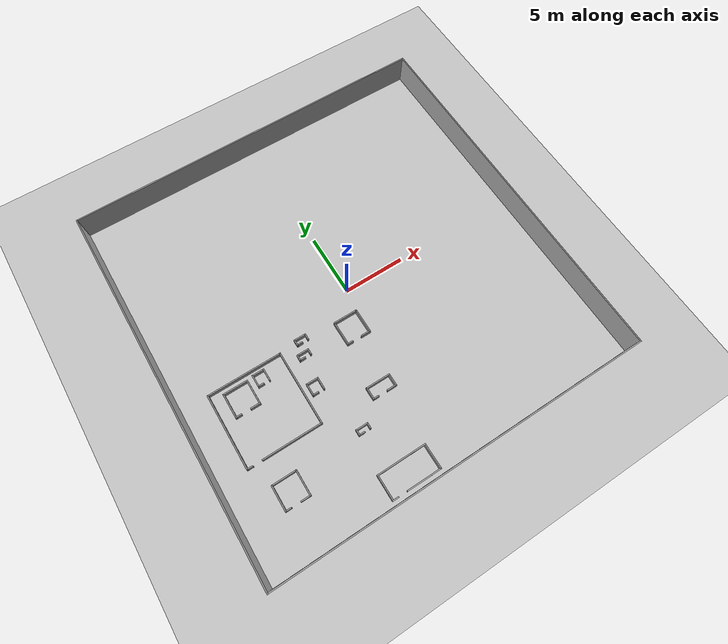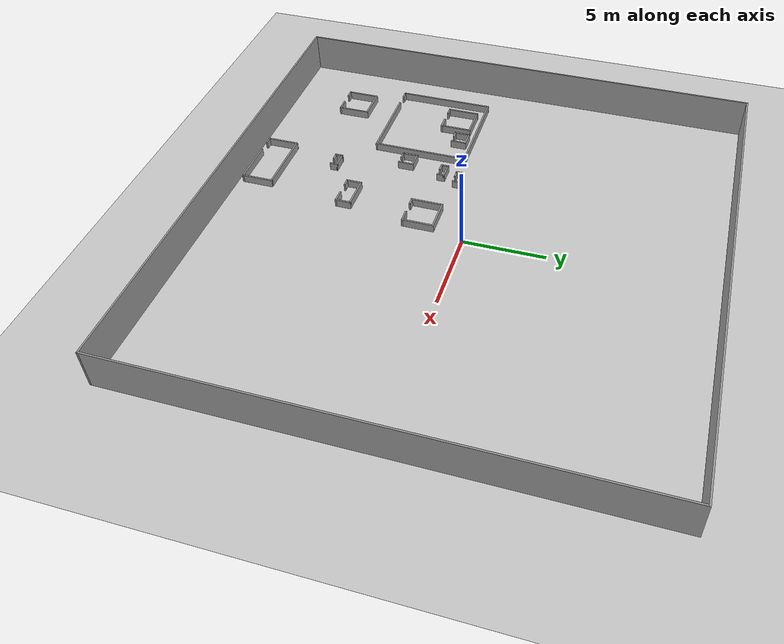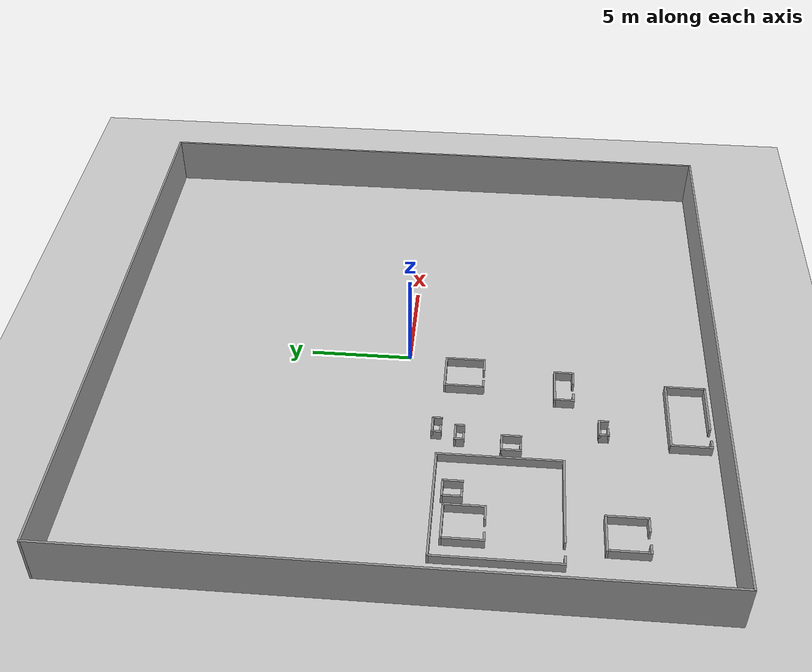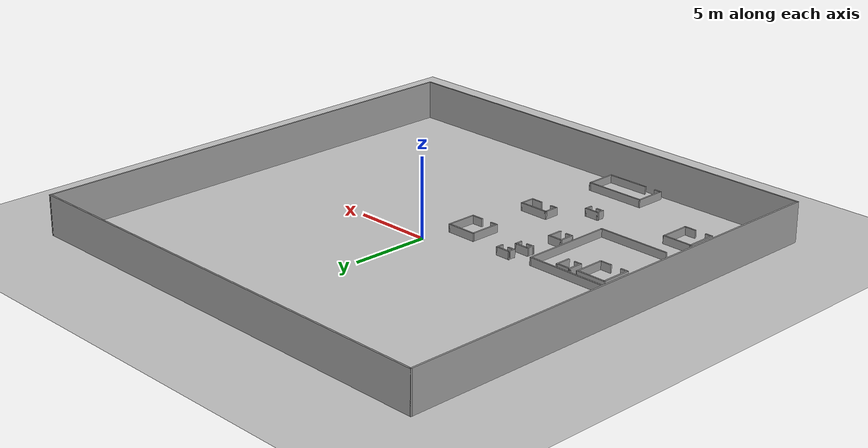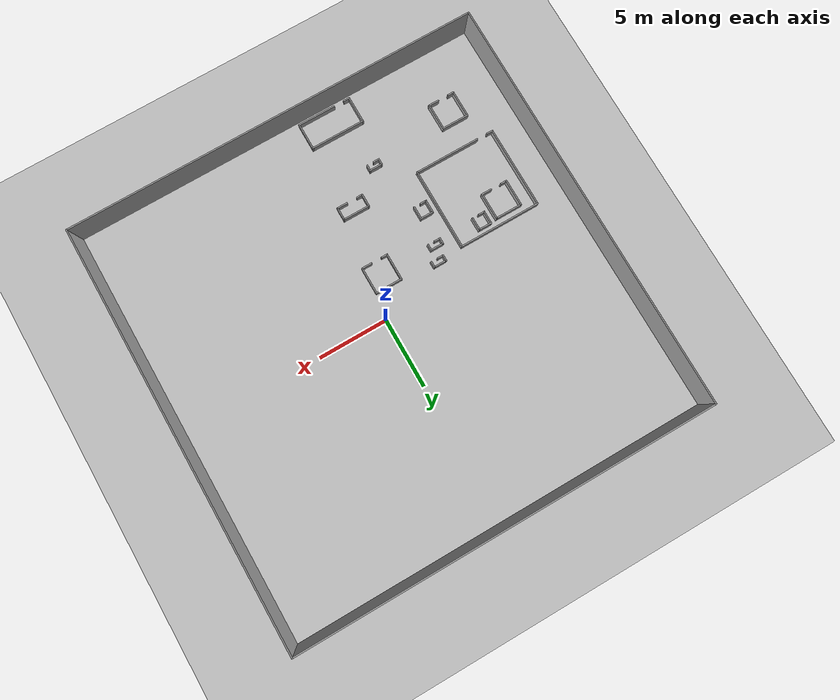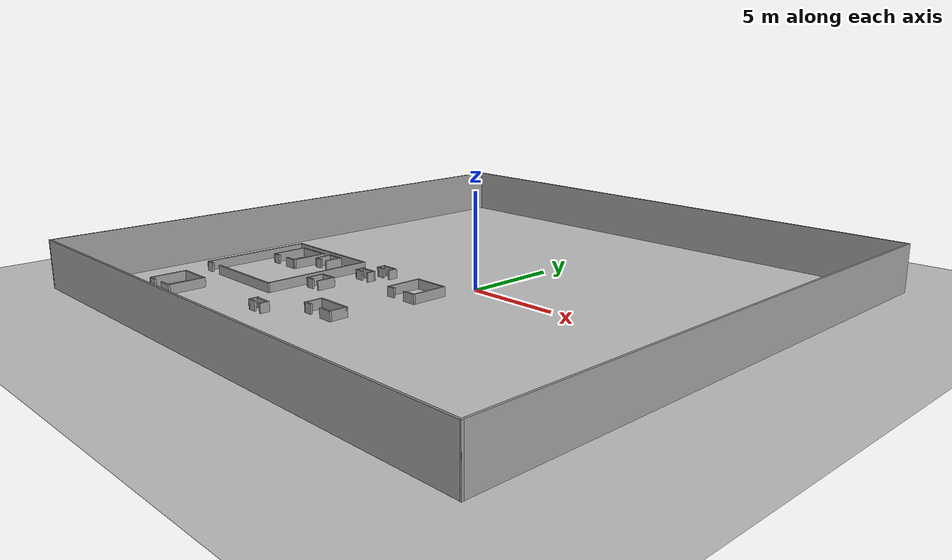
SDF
<sdf version="1.6">
 <world name="default">
  <model name="ground_plane">
   <static>1</static>
   <link name="link">
    <collision name="collision">
     <geometry><plane><normal>0 0 1</normal><size>30 30</size></plane></geometry>
     <surface>
      <contact><collide_bitmask>65535</collide_bitmask></contact>
      <friction><ode><mu>100</mu><mu2>50</mu2></ode></friction>
     </surface>
     <max_contacts>15</max_contacts>
    </collision>
    <visual name="visual">
     <cast_shadows>0</cast_shadows>
     <geometry><plane><normal>0 0 1</normal><size>30 30</size></plane></geometry>
     <material>
      <script><uri>file://media/materials/scripts/gazebo.material</uri><name>Gazebo/Grey</name></script>
     </material>
    </visual>
   </link>
  </model>
  <model name="outsidewall.sdf">
   <link name="Wall_3">
    <collision name="Wall_3_Collision">
     <geometry><box><size>30 0.10 2.5</size></box></geometry>
     <pose>0 0 1.25 0 -0 0</pose>
    </collision>
    <visual name="Wall_3_Visual">
     <pose>0 0 1.25 0 -0 0</pose>
     <geometry><box><size>30 0.10 2.5</size></box></geometry>
     <material>
      <script><uri>file://media/materials/scripts/gazebo.material</uri><name>Gazebo/Grey</name></script>
      <ambient>1 1 1 1</ambient>
     </material>
     <meta><layer>0</layer></meta>
    </visual>
    <pose>0 14.95 0 0 -0 0</pose>
   </link>
   <link name="Wall_5">
    <collision name="Wall_5_Collision">
     <geometry><box><size>30 0.10 2.5</size></box></geometry>
     <pose>0 0 1.25 0 -0 0</pose>
    </collision>
    <visual name="Wall_5_Visual">
     <pose>0 0 1.25 0 -0 0</pose>
     <geometry><box><size>30 0.10 2.5</size></box></geometry>
     <material>
      <script><uri>file://media/materials/scripts/gazebo.material</uri><name>Gazebo/Grey</name></script>
      <ambient>1 1 1 1</ambient>
     </material>
     <meta><layer>0</layer></meta>
    </visual>
    <pose>-14.95 0 0 0 -0 1.5707</pose>
   </link>
   <link name="Wall_6">
    <collision name="Wall_6_Collision">
     <geometry><box><size>30 0.10 2.5</size></box></geometry>
     <pose>0 0 1.25 0 -0 0</pose>
    </collision>
    <visual name="Wall_6_Visual">
     <pose>0 0 1.25 0 -0 0</pose>
     <geometry><box><size>30 0.10 2.5</size></box></geometry>
     <material>
      <script><uri>file://media/materials/scripts/gazebo.material</uri><name>Gazebo/Grey</name></script>
      <ambient>1 1 1 1</ambient>
     </material>
     <meta><layer>0</layer></meta>
    </visual>
    <pose>0 -14.95 0 0 -0 0</pose>
   </link>
   <link name="Wall_7">
    <collision name="Wall_7_Collision">
     <geometry><box><size>30 0.10 2.5</size></box></geometry>
     <pose>0 0 1.25 0 -0 0</pose>
    </collision>
    <visual name="Wall_7_Visual">
     <pose>0 0 1.25 0 -0 0</pose>
     <geometry><box><size>30 0.10 2.5</size></box></geometry>
     <material>
      <script><uri>file://media/materials/scripts/gazebo.material</uri><name>Gazebo/Grey</name></script>
      <ambient>1 1 1 1</ambient>
     </material>
     <meta><layer>0</layer></meta>
    </visual>
    <pose>14.95 0 0 0 -0 1.5707</pose>
   </link>
   <static>1</static>
  </model>
  <model name="shape7">
   <pose>-9.8 -4.7 0 0 -0 0</pose>
   <link name="Wall_34">
    <collision name="Wall_34_Collision">
     <geometry><box><size>6 0.1 0.5</size></box></geometry>
     <pose>0 0 0.25 0 -0 0</pose>
    </collision>
    <visual name="Wall_34_Visual">
     <pose>0 0 0.25 0 -0 0</pose>
     <geometry><box><size>6 0.1 0.5</size></box></geometry>
     <material>
      <script><uri>file://media/materials/scripts/gazebo.material</uri><name>Gazebo/Grey</name></script>
      <ambient>1 1 1 1</ambient>
     </material>
     <meta><layer>0</layer></meta>
    </visual>
    <pose>0 2.95 0 0 -0 0</pose>
   </link>
   <link name="Wall_35">
    <collision name="Wall_35_Collision">
     <geometry><box><size>6 0.1 0.5</size></box></geometry>
     <pose>0 0 0.25 0 -0 0</pose>
    </collision>
    <visual name="Wall_35_Visual">
     <pose>0 0 0.25 0 -0 0</pose>
     <geometry><box><size>6 0.1 0.5</size></box></geometry>
     <material>
      <script><uri>file://media/materials/scripts/gazebo.material</uri><name>Gazebo/Grey</name></script>
      <ambient>1 1 1 1</ambient>
     </material>
     <meta><layer>0</layer></meta>
    </visual>
    <pose>2.95 0 0 0 -0 -1.5708</pose>
   </link>
   <link name="Wall_36">
    <collision name="Wall_36_Collision">
     <geometry><box><size>4.8 0.1 0.5</size></box></geometry>
     <pose>0 0 0.25 0 -0 0</pose>
    </collision>
    <visual name="Wall_36_Visual">
     <pose>0 0 0.25 0 -0 0</pose>
     <geometry><box><size>4.8 0.1 0.5</size></box></geometry>
     <material>
      <script><uri>file://media/materials/scripts/gazebo.material</uri><name>Gazebo/Grey</name></script>
      <ambient>1 1 1 1</ambient>
     </material>
     <meta><layer>0</layer></meta>
    </visual>
    <pose>0.6 -2.95 0 0 -0 3.14159</pose>
   </link>
   <link name="Wall_38">
    <collision name="Wall_38_Collision">
     <geometry><box><size>6 0.1 0.5</size></box></geometry>
     <pose>0 0 0.25 0 -0 0</pose>
    </collision>
    <visual name="Wall_38_Visual">
     <pose>0 0 0.25 0 -0 0</pose>
     <geometry><box><size>6 0.1 0.5</size></box></geometry>
     <material>
      <script><uri>file://media/materials/scripts/gazebo.material</uri><name>Gazebo/Grey</name></script>
      <ambient>1 1 1 1</ambient>
     </material>
     <meta><layer>0</layer></meta>
    </visual>
    <pose>-2.95 0 0 0 -0 -1.5708</pose>
   </link>
   <link name="Wall_39">
    <collision name="Wall_39_Collision">
     <geometry><box><size>0.5 0.1 0.5</size></box></geometry>
     <pose>0 0 0.25 0 -0 0</pose>
    </collision>
    <visual name="Wall_39_Visual">
     <pose>0 0 0.25 0 -0 0</pose>
     <geometry><box><size>0.5 0.1 0.5</size></box></geometry>
     <material>
      <script><uri>file://media/materials/scripts/gazebo.material</uri><name>Gazebo/Grey</name></script>
      <ambient>1 1 1 1</ambient>
     </material>
     <meta><layer>0</layer></meta>
    </visual>
    <pose>-2.75 -2.95 0 0 -0 0</pose>
   </link>
   <static>1</static>
  </model>
  <model name="shape5">
   <pose>-10.9 -10.4 0 0 -0 0</pose>
   <link name="Wall_20">
    <collision name="Wall_20_Collision">
     <geometry><box><size>2 0.1 0.5</size></box></geometry>
     <pose>0 0 0.25 0 -0 0</pose>
    </collision>
    <visual name="Wall_20_Visual">
     <pose>0 0 0.25 0 -0 0</pose>
     <geometry><box><size>2 0.1 0.5</size></box></geometry>
     <material>
      <script><uri>file://media/materials/scripts/gazebo.material</uri><name>Gazebo/Grey</name></script>
      <ambient>1 1 1 1</ambient>
     </material>
     <meta><layer>0</layer></meta>
    </visual>
    <pose>-0 0.95 0 0 -0 0</pose>
   </link>
   <link name="Wall_21">
    <collision name="Wall_21_Collision">
     <geometry><box><size>2 0.1 0.5</size></box></geometry>
     <pose>0 0 0.25 0 -0 0</pose>
    </collision>
    <visual name="Wall_21_Visual">
     <pose>0 0 0.25 0 -0 0</pose>
     <geometry><box><size>2 0.1 0.5</size></box></geometry>
     <material>
      <script><uri>file://media/materials/scripts/gazebo.material</uri><name>Gazebo/Grey</name></script>
      <ambient>1 1 1 1</ambient>
     </material>
     <meta><layer>0</layer></meta>
    </visual>
    <pose>0.95 0 0 0 -0 -1.5708</pose>
   </link>
   <link name="Wall_22">
    <collision name="Wall_22_Collision">
     <geometry><box><size>0.8 0.1 0.5</size></box></geometry>
     <pose>0 0 0.25 0 -0 0</pose>
    </collision>
    <visual name="Wall_22_Visual">
     <pose>0 0 0.25 0 -0 0</pose>
     <geometry><box><size>0.8 0.1 0.5</size></box></geometry>
     <material>
      <script><uri>file://media/materials/scripts/gazebo.material</uri><name>Gazebo/Grey</name></script>
      <ambient>1 1 1 1</ambient>
     </material>
     <meta><layer>0</layer></meta>
    </visual>
    <pose>0.6 -0.95 0 0 -0 3.14159</pose>
   </link>
   <link name="Wall_24">
    <collision name="Wall_24_Collision">
     <geometry><box><size>2 0.1 0.5</size></box></geometry>
     <pose>0 0 0.25 0 -0 0</pose>
    </collision>
    <visual name="Wall_24_Visual">
     <pose>0 0 0.25 0 -0 0</pose>
     <geometry><box><size>2 0.1 0.5</size></box></geometry>
     <material>
      <script><uri>file://media/materials/scripts/gazebo.material</uri><name>Gazebo/Grey</name></script>
      <ambient>1 1 1 1</ambient>
     </material>
     <meta><layer>0</layer></meta>
    </visual>
    <pose>-0.95 0 0 0 -0 -1.5708</pose>
   </link>
   <link name="Wall_25">
    <collision name="Wall_25_Collision">
     <geometry><box><size>0.5 0.1 0.5</size></box></geometry>
     <pose>0 0 0.25 0 -0 0</pose>
    </collision>
    <visual name="Wall_25_Visual">
     <pose>0 0 0.25 0 -0 0</pose>
     <geometry><box><size>0.5 0.1 0.5</size></box></geometry>
     <material>
      <script><uri>file://media/materials/scripts/gazebo.material</uri><name>Gazebo/Grey</name></script>
      <ambient>1 1 1 1</ambient>
     </material>
     <meta><layer>0</layer></meta>
    </visual>
    <pose>-0.75 -0.95 0 0 -0 0</pose>
   </link>
   <static>1</static>
  </model>
  <model name="shape4">
   <pose>-5.9 -5.2 0 0 -0 0</pose>
   <link name="Wall_14">
    <collision name="Wall_14_Collision">
     <geometry><box><size>1 0.1 0.5</size></box></geometry>
     <pose>0 0 0.25 0 -0 0</pose>
    </collision>
    <visual name="Wall_14_Visual">
     <pose>0 0 0.25 0 -0 0</pose>
     <geometry><box><size>1 0.1 0.5</size></box></geometry>
     <material>
      <script><uri>file://media/materials/scripts/gazebo.material</uri><name>Gazebo/Grey</name></script>
      <ambient>1 1 1 1</ambient>
     </material>
     <meta><layer>0</layer></meta>
    </visual>
    <pose>-0 0.45 0 0 -0 0</pose>
   </link>
   <link name="Wall_15">
    <collision name="Wall_15_Collision">
     <geometry><box><size>1 0.1 0.5</size></box></geometry>
     <pose>0 0 0.25 0 -0 0</pose>
    </collision>
    <visual name="Wall_15_Visual">
     <pose>0 0 0.25 0 -0 0</pose>
     <geometry><box><size>1 0.1 0.5</size></box></geometry>
     <material>
      <script><uri>file://media/materials/scripts/gazebo.material</uri><name>Gazebo/Grey</name></script>
      <ambient>1 1 1 1</ambient>
     </material>
     <meta><layer>0</layer></meta>
    </visual>
    <pose>0.45 -0 0 0 -0 -1.5708</pose>
   </link>
   <link name="Wall_17">
    <collision name="Wall_17_Collision">
     <geometry><box><size>1 0.1 0.5</size></box></geometry>
     <pose>0 0 0.25 0 -0 0</pose>
    </collision>
    <visual name="Wall_17_Visual">
     <pose>0 0 0.25 0 -0 0</pose>
     <geometry><box><size>1 0.1 0.5</size></box></geometry>
     <material>
      <script><uri>file://media/materials/scripts/gazebo.material</uri><name>Gazebo/Grey</name></script>
      <ambient>1 1 1 1</ambient>
     </material>
     <meta><layer>0</layer></meta>
    </visual>
    <pose>-0.45 -0 0 0 -0 -1.5708</pose>
   </link>
   <link name="Wall_18">
    <collision name="Wall_18_Collision">
     <geometry><box><size>0.5 0.1 0.5</size></box></geometry>
     <pose>0 0 0.25 0 -0 0</pose>
    </collision>
    <visual name="Wall_18_Visual">
     <pose>0 0 0.25 0 -0 0</pose>
     <geometry><box><size>0.5 0.1 0.5</size></box></geometry>
     <material>
      <script><uri>file://media/materials/scripts/gazebo.material</uri><name>Gazebo/Grey</name></script>
      <ambient>1 1 1 1</ambient>
     </material>
     <meta><layer>0</layer></meta>
    </visual>
    <pose>-0.25 -0.45 0 0 -0 0</pose>
   </link>
   <static>1</static>
  </model>
  <model name="shape0">
   <pose>-4.6 -9.55 0 0 -0 0</pose>
   <link name="Wall_0">
    <pose>0 0.2 0 0 -0 0</pose>
    <inertial>
     <mass>1</mass>
     <inertia><ixx>1</ixx><ixy>0</ixy><ixz>0</ixz><iyy>1</iyy><iyz>0</iyz><izz>1</izz></inertia>
    </inertial>
    <visual name="Wall_0_Visual">
     <pose>0 0 0.25 0 -0 0</pose>
     <geometry><box><size>1 0.1 0.5</size></box></geometry>
     <material>
      <script><uri>file://media/materials/scripts/gazebo.material</uri><name>Gazebo/Grey</name></script>
      <ambient>1 1 1 1</ambient>
      <shader type="vertex"><normal_map>__default__</normal_map></shader>
      <diffuse>0.7 0.7 0.7 1</diffuse>
      <specular>0.01 0.01 0.01 1</specular>
      <emissive>0 0 0 1</emissive>
     </material>
     <meta><layer>0</layer></meta>
    </visual>
    <collision name="Wall_0_Collision">
     <pose>0 0 0.25 0 -0 0</pose>
     <geometry><box><size>1 0.1 0.5</size></box></geometry>
     <surface>
      <friction>
       <ode><mu>1</mu><mu2>1</mu2><fdir1>0 0 0</fdir1><slip1>0</slip1><slip2>0</slip2></ode>
       <torsional>
        <coefficient>1</coefficient>
        <patch_radius>0</patch_radius>
        <surface_radius>0</surface_radius>
        <use_patch_radius>1</use_patch_radius>
        <ode><slip>0</slip></ode>
       </torsional>
      </friction>
      <bounce><restitution_coefficient>0</restitution_coefficient><threshold>1e+06</threshold></bounce>
      <contact>
       <collide_without_contact>0</collide_without_contact>
       <collide_without_contact_bitmask>1</collide_without_contact_bitmask>
       <collide_bitmask>1</collide_bitmask>
       <ode>
        <soft_cfm>0</soft_cfm>
        <soft_erp>0.2</soft_erp>
        <kp>1e+13</kp>
        <kd>1</kd>
        <max_vel>0.01</max_vel>
        <min_depth>0</min_depth>
       </ode>
       <bullet>
        <split_impulse>1</split_impulse>
        <split_impulse_penetration_threshold>-0.01</split_impulse_penetration_threshold>
        <soft_cfm>0</soft_cfm>
        <soft_erp>0.2</soft_erp>
        <kp>1e+13</kp>
        <kd>1</kd>
       </bullet>
      </contact>
     </surface>
    </collision>
   </link>
   <link name="Wall_2">
    <pose>-0.45 0 0.01 0 0 -1.5708</pose>
    <inertial>
     <mass>1</mass>
     <inertia><ixx>1</ixx><ixy>0</ixy><ixz>0</ixz><iyy>1</iyy><iyz>0</iyz><izz>1</izz></inertia>
    </inertial>
    <visual name="Wall_2_Visual">
     <pose>0 0 0.25 0 -0 0</pose>
     <geometry><box><size>0.5 0.1 0.5</size></box></geometry>
     <material>
      <script><uri>file://media/materials/scripts/gazebo.material</uri><name>Gazebo/Grey</name></script>
      <ambient>1 1 1 1</ambient>
      <shader type="vertex"><normal_map>__default__</normal_map></shader>
      <diffuse>0.7 0.7 0.7 1</diffuse>
      <specular>0.01 0.01 0.01 1</specular>
      <emissive>0 0 0 1</emissive>
     </material>
     <meta><layer>0</layer></meta>
    </visual>
    <collision name="Wall_2_Collision">
     <pose>0 0 0.25 0 -0 0</pose>
     <geometry><box><size>0.5 0.1 0.5</size></box></geometry>
     <surface>
      <friction>
       <ode><mu>1</mu><mu2>1</mu2><fdir1>0 0 0</fdir1><slip1>0</slip1><slip2>0</slip2></ode>
       <torsional>
        <coefficient>1</coefficient>
        <patch_radius>0</patch_radius>
        <surface_radius>0</surface_radius>
        <use_patch_radius>1</use_patch_radius>
        <ode><slip>0</slip></ode>
       </torsional>
      </friction>
      <bounce><restitution_coefficient>0</restitution_coefficient><threshold>1e+06</threshold></bounce>
      <contact>
       <collide_without_contact>0</collide_without_contact>
       <collide_without_contact_bitmask>1</collide_without_contact_bitmask>
       <collide_bitmask>1</collide_bitmask>
       <ode>
        <soft_cfm>0</soft_cfm>
        <soft_erp>0.2</soft_erp>
        <kp>1e+13</kp>
        <kd>1</kd>
        <max_vel>0.01</max_vel>
        <min_depth>0</min_depth>
       </ode>
       <bullet>
        <split_impulse>1</split_impulse>
        <split_impulse_penetration_threshold>-0.01</split_impulse_penetration_threshold>
        <soft_cfm>0</soft_cfm>
        <soft_erp>0.2</soft_erp>
        <kp>1e+13</kp>
        <kd>1</kd>
       </bullet>
      </contact>
     </surface>
    </collision>
   </link>
   <link name="Wall_4">
    <pose>0.45 0 0 0 0 -1.5708</pose>
    <inertial>
     <mass>1</mass>
     <inertia><ixx>1</ixx><ixy>0</ixy><ixz>0</ixz><iyy>1</iyy><iyz>0</iyz><izz>1</izz></inertia>
    </inertial>
    <visual name="Wall_4_Visual">
     <pose>0 0 0.25 0 -0 0</pose>
     <geometry><box><size>0.5 0.1 0.5</size></box></geometry>
     <material>
      <script><uri>file://media/materials/scripts/gazebo.material</uri><name>Gazebo/Grey</name></script>
      <ambient>1 1 1 1</ambient>
      <shader type="vertex"><normal_map>__default__</normal_map></shader>
      <diffuse>0.7 0.7 0.7 1</diffuse>
      <specular>0.01 0.01 0.01 1</specular>
      <emissive>0 0 0 1</emissive>
     </material>
     <meta><layer>0</layer></meta>
    </visual>
    <collision name="Wall_4_Collision">
     <pose>0 0 0.25 0 -0 0</pose>
     <geometry><box><size>0.5 0.1 0.5</size></box></geometry>
     <surface>
      <friction>
       <ode><mu>1</mu><mu2>1</mu2><fdir1>0 0 0</fdir1><slip1>0</slip1><slip2>0</slip2></ode>
       <torsional>
        <coefficient>1</coefficient>
        <patch_radius>0</patch_radius>
        <surface_radius>0</surface_radius>
        <use_patch_radius>1</use_patch_radius>
        <ode><slip>0</slip></ode>
       </torsional>
      </friction>
      <bounce><restitution_coefficient>0</restitution_coefficient><threshold>1e+06</threshold></bounce>
      <contact>
       <collide_without_contact>0</collide_without_contact>
       <collide_without_contact_bitmask>1</collide_without_contact_bitmask>
       <collide_bitmask>1</collide_bitmask>
       <ode>
        <soft_cfm>0</soft_cfm>
        <soft_erp>0.2</soft_erp>
        <kp>1e+13</kp>
        <kd>1</kd>
        <max_vel>0.01</max_vel>
        <min_depth>0</min_depth>
       </ode>
       <bullet>
        <split_impulse>1</split_impulse>
        <split_impulse_penetration_threshold>-0.01</split_impulse_penetration_threshold>
        <soft_cfm>0</soft_cfm>
        <soft_erp>0.2</soft_erp>
        <kp>1e+13</kp>
        <kd>1</kd>
       </bullet>
      </contact>
     </surface>
    </collision>
   </link>
   <link name="Wall_7">
    <pose>-0.25 -0.2 0 0 -0 0</pose>
    <inertial>
     <mass>1</mass>
     <inertia><ixx>1</ixx><ixy>0</ixy><ixz>0</ixz><iyy>1</iyy><iyz>0</iyz><izz>1</izz></inertia>
    </inertial>
    <visual name="Wall_7_Visual">
     <pose>0 0 0.25 0 -0 0</pose>
     <geometry><box><size>0.5 0.1 0.5</size></box></geometry>
     <material>
      <script><uri>file://media/materials/scripts/gazebo.material</uri><name>Gazebo/Grey</name></script>
      <ambient>1 1 1 1</ambient>
      <shader type="vertex"><normal_map>__default__</normal_map></shader>
      <diffuse>0.7 0.7 0.7 1</diffuse>
      <specular>0.01 0.01 0.01 1</specular>
      <emissive>0 0 0 1</emissive>
     </material>
     <meta><layer>0</layer></meta>
    </visual>
    <collision name="Wall_7_Collision">
     <pose>0 0 0.25 0 -0 0</pose>
     <geometry><box><size>0.5 0.1 0.5</size></box></geometry>
     <surface>
      <friction>
       <ode><mu>1</mu><mu2>1</mu2><fdir1>0 0 0</fdir1><slip1>0</slip1><slip2>0</slip2></ode>
       <torsional>
        <coefficient>1</coefficient>
        <patch_radius>0</patch_radius>
        <surface_radius>0</surface_radius>
        <use_patch_radius>1</use_patch_radius>
        <ode><slip>0</slip></ode>
       </torsional>
      </friction>
      <bounce><restitution_coefficient>0</restitution_coefficient><threshold>1e+06</threshold></bounce>
      <contact>
       <collide_without_contact>0</collide_without_contact>
       <collide_without_contact_bitmask>1</collide_without_contact_bitmask>
       <collide_bitmask>1</collide_bitmask>
       <ode>
        <soft_cfm>0</soft_cfm>
        <soft_erp>0.2</soft_erp>
        <kp>1e+13</kp>
        <kd>1</kd>
        <max_vel>0.01</max_vel>
        <min_depth>0</min_depth>
       </ode>
       <bullet>
        <split_impulse>1</split_impulse>
        <split_impulse_penetration_threshold>-0.01</split_impulse_penetration_threshold>
        <soft_cfm>0</soft_cfm>
        <soft_erp>0.2</soft_erp>
        <kp>1e+13</kp>
        <kd>1</kd>
       </bullet>
      </contact>
     </surface>
    </collision>
   </link>
   <static>1</static>
  </model>
  <model name="shape1">
   <pose>-1.9 -7.7 0 0 -0 0</pose>
   <link name="Wall_0">
    <collision name="Wall_0_Collision">
     <geometry><box><size>2 0.1 0.5</size></box></geometry>
     <pose>0 0 0.25 0 -0 0</pose>
    </collision>
    <visual name="Wall_0_Visual">
     <pose>0 0 0.25 0 -0 0</pose>
     <geometry><box><size>2 0.1 0.5</size></box></geometry>
     <material>
      <script><uri>file://media/materials/scripts/gazebo.material</uri><name>Gazebo/Grey</name></script>
      <ambient>1 1 1 1</ambient>
     </material>
     <meta><layer>0</layer></meta>
    </visual>
    <pose>0 0.45 0 0 -0 0</pose>
   </link>
   <link name="Wall_1">
    <collision name="Wall_1_Collision">
     <geometry><box><size>1 0.1 0.5</size></box></geometry>
     <pose>0 0 0.25 0 -0 0</pose>
    </collision>
    <visual name="Wall_1_Visual">
     <pose>0 0 0.25 0 -0 0</pose>
     <geometry><box><size>1 0.1 0.5</size></box></geometry>
     <material>
      <script><uri>file://media/materials/scripts/gazebo.material</uri><name>Gazebo/Grey</name></script>
      <ambient>1 1 1 1</ambient>
     </material>
     <meta><layer>0</layer></meta>
    </visual>
    <pose>0.95 -0 0 0 -0 -1.5708</pose>
   </link>
   <link name="Wall_2">
    <collision name="Wall_2_Collision">
     <geometry><box><size>0.8 0.1 0.5</size></box></geometry>
     <pose>0 0 0.25 0 -0 0</pose>
    </collision>
    <visual name="Wall_2_Visual">
     <pose>0 0 0.25 0 -0 0</pose>
     <geometry><box><size>0.8 0.1 0.5</size></box></geometry>
     <material>
      <script><uri>file://media/materials/scripts/gazebo.material</uri><name>Gazebo/Grey</name></script>
      <ambient>1 1 1 1</ambient>
     </material>
     <meta><layer>0</layer></meta>
    </visual>
    <pose>0.6 -0.45 0 0 -0 3.14159</pose>
   </link>
   <link name="Wall_4">
    <collision name="Wall_4_Collision">
     <geometry><box><size>1 0.1 0.5</size></box></geometry>
     <pose>0 0 0.25 0 -0 0</pose>
    </collision>
    <visual name="Wall_4_Visual">
     <pose>0 0 0.25 0 -0 0</pose>
     <geometry><box><size>1 0.1 0.5</size></box></geometry>
     <material>
      <script><uri>file://media/materials/scripts/gazebo.material</uri><name>Gazebo/Grey</name></script>
      <ambient>1 1 1 1</ambient>
     </material>
     <meta><layer>0</layer></meta>
    </visual>
    <pose>-0.95 -0 0 0 -0 -1.5708</pose>
   </link>
   <link name="Wall_5">
    <collision name="Wall_5_Collision">
     <geometry><box><size>0.499474 0.1 0.5</size></box></geometry>
     <pose>0 0 0.25 0 -0 0</pose>
    </collision>
    <visual name="Wall_5_Visual">
     <pose>0 0 0.25 0 -0 0</pose>
     <geometry><box><size>0.499474 0.1 0.5</size></box></geometry>
     <material>
      <script><uri>file://media/materials/scripts/gazebo.material</uri><name>Gazebo/Grey</name></script>
      <ambient>1 1 1 1</ambient>
     </material>
     <meta><layer>0</layer></meta>
    </visual>
    <pose>-0.75 -0.45 0 0 -0 0</pose>
   </link>
   <static>1</static>
  </model>
  <model name="shape5">
   <pose>-10.8 -3.2 0 0 -0 0</pose>
   <link name="Wall_20">
    <collision name="Wall_20_Collision">
     <geometry><box><size>2 0.1 0.5</size></box></geometry>
     <pose>0 0 0.25 0 -0 0</pose>
    </collision>
    <visual name="Wall_20_Visual">
     <pose>0 0 0.25 0 -0 0</pose>
     <geometry><box><size>2 0.1 0.5</size></box></geometry>
     <material>
      <script><uri>file://media/materials/scripts/gazebo.material</uri><name>Gazebo/Grey</name></script>
      <ambient>1 1 1 1</ambient>
     </material>
     <meta><layer>0</layer></meta>
    </visual>
    <pose>-0 0.95 0 0 -0 0</pose>
   </link>
   <link name="Wall_21">
    <collision name="Wall_21_Collision">
     <geometry><box><size>2 0.1 0.5</size></box></geometry>
     <pose>0 0 0.25 0 -0 0</pose>
    </collision>
    <visual name="Wall_21_Visual">
     <pose>0 0 0.25 0 -0 0</pose>
     <geometry><box><size>2 0.1 0.5</size></box></geometry>
     <material>
      <script><uri>file://media/materials/scripts/gazebo.material</uri><name>Gazebo/Grey</name></script>
      <ambient>1 1 1 1</ambient>
     </material>
     <meta><layer>0</layer></meta>
    </visual>
    <pose>0.95 0 0 0 -0 -1.5708</pose>
   </link>
   <link name="Wall_22">
    <collision name="Wall_22_Collision">
     <geometry><box><size>0.8 0.1 0.5</size></box></geometry>
     <pose>0 0 0.25 0 -0 0</pose>
    </collision>
    <visual name="Wall_22_Visual">
     <pose>0 0 0.25 0 -0 0</pose>
     <geometry><box><size>0.8 0.1 0.5</size></box></geometry>
     <material>
      <script><uri>file://media/materials/scripts/gazebo.material</uri><name>Gazebo/Grey</name></script>
      <ambient>1 1 1 1</ambient>
     </material>
     <meta><layer>0</layer></meta>
    </visual>
    <pose>0.6 -0.95 0 0 -0 3.14159</pose>
   </link>
   <link name="Wall_24">
    <collision name="Wall_24_Collision">
     <geometry><box><size>2 0.1 0.5</size></box></geometry>
     <pose>0 0 0.25 0 -0 0</pose>
    </collision>
    <visual name="Wall_24_Visual">
     <pose>0 0 0.25 0 -0 0</pose>
     <geometry><box><size>2 0.1 0.5</size></box></geometry>
     <material>
      <script><uri>file://media/materials/scripts/gazebo.material</uri><name>Gazebo/Grey</name></script>
      <ambient>1 1 1 1</ambient>
     </material>
     <meta><layer>0</layer></meta>
    </visual>
    <pose>-0.95 0 0 0 -0 -1.5708</pose>
   </link>
   <link name="Wall_25">
    <collision name="Wall_25_Collision">
     <geometry><box><size>0.5 0.1 0.5</size></box></geometry>
     <pose>0 0 0.25 0 -0 0</pose>
    </collision>
    <visual name="Wall_25_Visual">
     <pose>0 0 0.25 0 -0 0</pose>
     <geometry><box><size>0.5 0.1 0.5</size></box></geometry>
     <material>
      <script><uri>file://media/materials/scripts/gazebo.material</uri><name>Gazebo/Grey</name></script>
      <ambient>1 1 1 1</ambient>
     </material>
     <meta><layer>0</layer></meta>
    </visual>
    <pose>-0.75 -0.95 0 0 -0 0</pose>
   </link>
   <static>1</static>
  </model>
  <model name="shape0">
   <pose>-5 -1.65 0 0 -0 0</pose>
   <link name="Wall_0">
    <pose>0 0.2 0 0 -0 0</pose>
    <inertial>
     <mass>1</mass>
     <inertia><ixx>1</ixx><ixy>0</ixy><ixz>0</ixz><iyy>1</iyy><iyz>0</iyz><izz>1</izz></inertia>
    </inertial>
    <visual name="Wall_0_Visual">
     <pose>0 0 0.25 0 -0 0</pose>
     <geometry><box><size>1 0.1 0.5</size></box></geometry>
     <material>
      <script><uri>file://media/materials/scripts/gazebo.material</uri><name>Gazebo/Grey</name></script>
      <ambient>1 1 1 1</ambient>
      <shader type="vertex"><normal_map>__default__</normal_map></shader>
      <diffuse>0.7 0.7 0.7 1</diffuse>
      <specular>0.01 0.01 0.01 1</specular>
      <emissive>0 0 0 1</emissive>
     </material>
     <meta><layer>0</layer></meta>
    </visual>
    <collision name="Wall_0_Collision">
     <pose>0 0 0.25 0 -0 0</pose>
     <geometry><box><size>1 0.1 0.5</size></box></geometry>
     <surface>
      <friction>
       <ode><mu>1</mu><mu2>1</mu2><fdir1>0 0 0</fdir1><slip1>0</slip1><slip2>0</slip2></ode>
       <torsional>
        <coefficient>1</coefficient>
        <patch_radius>0</patch_radius>
        <surface_radius>0</surface_radius>
        <use_patch_radius>1</use_patch_radius>
        <ode><slip>0</slip></ode>
       </torsional>
      </friction>
      <bounce><restitution_coefficient>0</restitution_coefficient><threshold>1e+06</threshold></bounce>
      <contact>
       <collide_without_contact>0</collide_without_contact>
       <collide_without_contact_bitmask>1</collide_without_contact_bitmask>
       <collide_bitmask>1</collide_bitmask>
       <ode>
        <soft_cfm>0</soft_cfm>
        <soft_erp>0.2</soft_erp>
        <kp>1e+13</kp>
        <kd>1</kd>
        <max_vel>0.01</max_vel>
        <min_depth>0</min_depth>
       </ode>
       <bullet>
        <split_impulse>1</split_impulse>
        <split_impulse_penetration_threshold>-0.01</split_impulse_penetration_threshold>
        <soft_cfm>0</soft_cfm>
        <soft_erp>0.2</soft_erp>
        <kp>1e+13</kp>
        <kd>1</kd>
       </bullet>
      </contact>
     </surface>
    </collision>
   </link>
   <link name="Wall_2">
    <pose>-0.45 0 0.01 0 0 -1.5708</pose>
    <inertial>
     <mass>1</mass>
     <inertia><ixx>1</ixx><ixy>0</ixy><ixz>0</ixz><iyy>1</iyy><iyz>0</iyz><izz>1</izz></inertia>
    </inertial>
    <visual name="Wall_2_Visual">
     <pose>0 0 0.25 0 -0 0</pose>
     <geometry><box><size>0.5 0.1 0.5</size></box></geometry>
     <material>
      <script><uri>file://media/materials/scripts/gazebo.material</uri><name>Gazebo/Grey</name></script>
      <ambient>1 1 1 1</ambient>
      <shader type="vertex"><normal_map>__default__</normal_map></shader>
      <diffuse>0.7 0.7 0.7 1</diffuse>
      <specular>0.01 0.01 0.01 1</specular>
      <emissive>0 0 0 1</emissive>
     </material>
     <meta><layer>0</layer></meta>
    </visual>
    <collision name="Wall_2_Collision">
     <pose>0 0 0.25 0 -0 0</pose>
     <geometry><box><size>0.5 0.1 0.5</size></box></geometry>
     <surface>
      <friction>
       <ode><mu>1</mu><mu2>1</mu2><fdir1>0 0 0</fdir1><slip1>0</slip1><slip2>0</slip2></ode>
       <torsional>
        <coefficient>1</coefficient>
        <patch_radius>0</patch_radius>
        <surface_radius>0</surface_radius>
        <use_patch_radius>1</use_patch_radius>
        <ode><slip>0</slip></ode>
       </torsional>
      </friction>
      <bounce><restitution_coefficient>0</restitution_coefficient><threshold>1e+06</threshold></bounce>
      <contact>
       <collide_without_contact>0</collide_without_contact>
       <collide_without_contact_bitmask>1</collide_without_contact_bitmask>
       <collide_bitmask>1</collide_bitmask>
       <ode>
        <soft_cfm>0</soft_cfm>
        <soft_erp>0.2</soft_erp>
        <kp>1e+13</kp>
        <kd>1</kd>
        <max_vel>0.01</max_vel>
        <min_depth>0</min_depth>
       </ode>
       <bullet>
        <split_impulse>1</split_impulse>
        <split_impulse_penetration_threshold>-0.01</split_impulse_penetration_threshold>
        <soft_cfm>0</soft_cfm>
        <soft_erp>0.2</soft_erp>
        <kp>1e+13</kp>
        <kd>1</kd>
       </bullet>
      </contact>
     </surface>
    </collision>
   </link>
   <link name="Wall_4">
    <pose>0.45 0 0 0 0 -1.5708</pose>
    <inertial>
     <mass>1</mass>
     <inertia><ixx>1</ixx><ixy>0</ixy><ixz>0</ixz><iyy>1</iyy><iyz>0</iyz><izz>1</izz></inertia>
    </inertial>
    <visual name="Wall_4_Visual">
     <pose>0 0 0.25 0 -0 0</pose>
     <geometry><box><size>0.5 0.1 0.5</size></box></geometry>
     <material>
      <script><uri>file://media/materials/scripts/gazebo.material</uri><name>Gazebo/Grey</name></script>
      <ambient>1 1 1 1</ambient>
      <shader type="vertex"><normal_map>__default__</normal_map></shader>
      <diffuse>0.7 0.7 0.7 1</diffuse>
      <specular>0.01 0.01 0.01 1</specular>
      <emissive>0 0 0 1</emissive>
     </material>
     <meta><layer>0</layer></meta>
    </visual>
    <collision name="Wall_4_Collision">
     <pose>0 0 0.25 0 -0 0</pose>
     <geometry><box><size>0.5 0.1 0.5</size></box></geometry>
     <surface>
      <friction>
       <ode><mu>1</mu><mu2>1</mu2><fdir1>0 0 0</fdir1><slip1>0</slip1><slip2>0</slip2></ode>
       <torsional>
        <coefficient>1</coefficient>
        <patch_radius>0</patch_radius>
        <surface_radius>0</surface_radius>
        <use_patch_radius>1</use_patch_radius>
        <ode><slip>0</slip></ode>
       </torsional>
      </friction>
      <bounce><restitution_coefficient>0</restitution_coefficient><threshold>1e+06</threshold></bounce>
      <contact>
       <collide_without_contact>0</collide_without_contact>
       <collide_without_contact_bitmask>1</collide_without_contact_bitmask>
       <collide_bitmask>1</collide_bitmask>
       <ode>
        <soft_cfm>0</soft_cfm>
        <soft_erp>0.2</soft_erp>
        <kp>1e+13</kp>
        <kd>1</kd>
        <max_vel>0.01</max_vel>
        <min_depth>0</min_depth>
       </ode>
       <bullet>
        <split_impulse>1</split_impulse>
        <split_impulse_penetration_threshold>-0.01</split_impulse_penetration_threshold>
        <soft_cfm>0</soft_cfm>
        <soft_erp>0.2</soft_erp>
        <kp>1e+13</kp>
        <kd>1</kd>
       </bullet>
      </contact>
     </surface>
    </collision>
   </link>
   <link name="Wall_7">
    <pose>-0.25 -0.2 0 0 -0 0</pose>
    <inertial>
     <mass>1</mass>
     <inertia><ixx>1</ixx><ixy>0</ixy><ixz>0</ixz><iyy>1</iyy><iyz>0</iyz><izz>1</izz></inertia>
    </inertial>
    <visual name="Wall_7_Visual">
     <pose>0 0 0.25 0 -0 0</pose>
     <geometry><box><size>0.5 0.1 0.5</size></box></geometry>
     <material>
      <script><uri>file://media/materials/scripts/gazebo.material</uri><name>Gazebo/Grey</name></script>
      <ambient>1 1 1 1</ambient>
      <shader type="vertex"><normal_map>__default__</normal_map></shader>
      <diffuse>0.7 0.7 0.7 1</diffuse>
      <specular>0.01 0.01 0.01 1</specular>
      <emissive>0 0 0 1</emissive>
     </material>
     <meta><layer>0</layer></meta>
    </visual>
    <collision name="Wall_7_Collision">
     <pose>0 0 0.25 0 -0 0</pose>
     <geometry><box><size>0.5 0.1 0.5</size></box></geometry>
     <surface>
      <friction>
       <ode><mu>1</mu><mu2>1</mu2><fdir1>0 0 0</fdir1><slip1>0</slip1><slip2>0</slip2></ode>
       <torsional>
        <coefficient>1</coefficient>
        <patch_radius>0</patch_radius>
        <surface_radius>0</surface_radius>
        <use_patch_radius>1</use_patch_radius>
        <ode><slip>0</slip></ode>
       </torsional>
      </friction>
      <bounce><restitution_coefficient>0</restitution_coefficient><threshold>1e+06</threshold></bounce>
      <contact>
       <collide_without_contact>0</collide_without_contact>
       <collide_without_contact_bitmask>1</collide_without_contact_bitmask>
       <collide_bitmask>1</collide_bitmask>
       <ode>
        <soft_cfm>0</soft_cfm>
        <soft_erp>0.2</soft_erp>
        <kp>1e+13</kp>
        <kd>1</kd>
        <max_vel>0.01</max_vel>
        <min_depth>0</min_depth>
       </ode>
       <bullet>
        <split_impulse>1</split_impulse>
        <split_impulse_penetration_threshold>-0.01</split_impulse_penetration_threshold>
        <soft_cfm>0</soft_cfm>
        <soft_erp>0.2</soft_erp>
        <kp>1e+13</kp>
        <kd>1</kd>
       </bullet>
      </contact>
     </surface>
    </collision>
   </link>
   <static>1</static>
  </model>
  <model name="shape2">
   <pose>-3.5 -13.6 0 0 -0 0</pose>
   <link name="Wall_0">
    <collision name="Wall_0_Collision">
     <geometry><box><size>3.98685 0.1 0.5</size></box></geometry>
     <pose>0 0 0.25 0 -0 0</pose>
    </collision>
    <visual name="Wall_0_Visual">
     <pose>0 0 0.25 0 -0 0</pose>
     <geometry><box><size>3.98685 0.1 0.5</size></box></geometry>
     <material>
      <script><uri>file://media/materials/scripts/gazebo.material</uri><name>Gazebo/Grey</name></script>
      <ambient>1 1 1 1</ambient>
     </material>
     <meta><layer>0</layer></meta>
    </visual>
    <pose>0.003288 0.95 0 0 -0 0</pose>
   </link>
   <link name="Wall_1">
    <collision name="Wall_1_Collision">
     <geometry><box><size>2 0.1 0.5</size></box></geometry>
     <pose>0 0 0.25 0 -0 0</pose>
    </collision>
    <visual name="Wall_1_Visual">
     <pose>0 0 0.25 0 -0 0</pose>
     <geometry><box><size>2 0.1 0.5</size></box></geometry>
     <material>
      <script><uri>file://media/materials/scripts/gazebo.material</uri><name>Gazebo/Grey</name></script>
      <ambient>1 1 1 1</ambient>
     </material>
     <meta><layer>0</layer></meta>
    </visual>
    <pose>1.94671 0 0 0 -0 -1.5708</pose>
   </link>
   <link name="Wall_2">
    <collision name="Wall_2_Collision">
     <geometry><box><size>2.8 0.1 0.5</size></box></geometry>
     <pose>0 0 0.25 0 -0 0</pose>
    </collision>
    <visual name="Wall_2_Visual">
     <pose>0 0 0.25 0 -0 0</pose>
     <geometry><box><size>2.8 0.1 0.5</size></box></geometry>
     <material>
      <script><uri>file://media/materials/scripts/gazebo.material</uri><name>Gazebo/Grey</name></script>
      <ambient>1 1 1 1</ambient>
     </material>
     <meta><layer>0</layer></meta>
    </visual>
    <pose>0.596712 -0.95 0 0 -0 3.14159</pose>
   </link>
   <link name="Wall_4">
    <collision name="Wall_4_Collision">
     <geometry><box><size>2 0.1 0.5</size></box></geometry>
     <pose>0 0 0.25 0 -0 0</pose>
    </collision>
    <visual name="Wall_4_Visual">
     <pose>0 0 0.25 0 -0 0</pose>
     <geometry><box><size>2 0.1 0.5</size></box></geometry>
     <material>
      <script><uri>file://media/materials/scripts/gazebo.material</uri><name>Gazebo/Grey</name></script>
      <ambient>1 1 1 1</ambient>
     </material>
     <meta><layer>0</layer></meta>
    </visual>
    <pose>-1.94671 0 0 0 -0 -1.5708</pose>
   </link>
   <link name="Wall_5">
    <collision name="Wall_5_Collision">
     <geometry><box><size>0.5 0.1 0.5</size></box></geometry>
     <pose>0 0 0.25 0 -0 0</pose>
    </collision>
    <visual name="Wall_5_Visual">
     <pose>0 0 0.25 0 -0 0</pose>
     <geometry><box><size>0.5 0.1 0.5</size></box></geometry>
     <material>
      <script><uri>file://media/materials/scripts/gazebo.material</uri><name>Gazebo/Grey</name></script>
      <ambient>1 1 1 1</ambient>
     </material>
     <meta><layer>0</layer></meta>
    </visual>
    <pose>-1.74671 -0.95 0 0 -0 0</pose>
   </link>
   <static>1</static>
  </model>
  <model name="shape5">
   <pose>-1.3 -2.8 0 0 -0 0</pose>
   <link name="Wall_20">
    <collision name="Wall_20_Collision">
     <geometry><box><size>2 0.1 0.5</size></box></geometry>
     <pose>0 0 0.25 0 -0 0</pose>
    </collision>
    <visual name="Wall_20_Visual">
     <pose>0 0 0.25 0 -0 0</pose>
     <geometry><box><size>2 0.1 0.5</size></box></geometry>
     <material>
      <script><uri>file://media/materials/scripts/gazebo.material</uri><name>Gazebo/Grey</name></script>
      <ambient>1 1 1 1</ambient>
     </material>
     <meta><layer>0</layer></meta>
    </visual>
    <pose>-0 0.95 0 0 -0 0</pose>
   </link>
   <link name="Wall_21">
    <collision name="Wall_21_Collision">
     <geometry><box><size>2 0.1 0.5</size></box></geometry>
     <pose>0 0 0.25 0 -0 0</pose>
    </collision>
    <visual name="Wall_21_Visual">
     <pose>0 0 0.25 0 -0 0</pose>
     <geometry><box><size>2 0.1 0.5</size></box></geometry>
     <material>
      <script><uri>file://media/materials/scripts/gazebo.material</uri><name>Gazebo/Grey</name></script>
      <ambient>1 1 1 1</ambient>
     </material>
     <meta><layer>0</layer></meta>
    </visual>
    <pose>0.95 0 0 0 -0 -1.5708</pose>
   </link>
   <link name="Wall_22">
    <collision name="Wall_22_Collision">
     <geometry><box><size>0.8 0.1 0.5</size></box></geometry>
     <pose>0 0 0.25 0 -0 0</pose>
    </collision>
    <visual name="Wall_22_Visual">
     <pose>0 0 0.25 0 -0 0</pose>
     <geometry><box><size>0.8 0.1 0.5</size></box></geometry>
     <material>
      <script><uri>file://media/materials/scripts/gazebo.material</uri><name>Gazebo/Grey</name></script>
      <ambient>1 1 1 1</ambient>
     </material>
     <meta><layer>0</layer></meta>
    </visual>
    <pose>0.6 -0.95 0 0 -0 3.14159</pose>
   </link>
   <link name="Wall_24">
    <collision name="Wall_24_Collision">
     <geometry><box><size>2 0.1 0.5</size></box></geometry>
     <pose>0 0 0.25 0 -0 0</pose>
    </collision>
    <visual name="Wall_24_Visual">
     <pose>0 0 0.25 0 -0 0</pose>
     <geometry><box><size>2 0.1 0.5</size></box></geometry>
     <material>
      <script><uri>file://media/materials/scripts/gazebo.material</uri><name>Gazebo/Grey</name></script>
      <ambient>1 1 1 1</ambient>
     </material>
     <meta><layer>0</layer></meta>
    </visual>
    <pose>-0.95 0 0 0 -0 -1.5708</pose>
   </link>
   <link name="Wall_25">
    <collision name="Wall_25_Collision">
     <geometry><box><size>0.5 0.1 0.5</size></box></geometry>
     <pose>0 0 0.25 0 -0 0</pose>
    </collision>
    <visual name="Wall_25_Visual">
     <pose>0 0 0.25 0 -0 0</pose>
     <geometry><box><size>0.5 0.1 0.5</size></box></geometry>
     <material>
      <script><uri>file://media/materials/scripts/gazebo.material</uri><name>Gazebo/Grey</name></script>
      <ambient>1 1 1 1</ambient>
     </material>
     <meta><layer>0</layer></meta>
    </visual>
    <pose>-0.75 -0.95 0 0 -0 0</pose>
   </link>
   <static>1</static>
  </model>
  <model name="shape4">
   <pose>-8.9 -2.6 0 0 -0 0</pose>
   <link name="Wall_14">
    <collision name="Wall_14_Collision">
     <geometry><box><size>1 0.1 0.5</size></box></geometry>
     <pose>0 0 0.25 0 -0 0</pose>
    </collision>
    <visual name="Wall_14_Visual">
     <pose>0 0 0.25 0 -0 0</pose>
     <geometry><box><size>1 0.1 0.5</size></box></geometry>
     <material>
      <script><uri>file://media/materials/scripts/gazebo.material</uri><name>Gazebo/Grey</name></script>
      <ambient>1 1 1 1</ambient>
     </material>
     <meta><layer>0</layer></meta>
    </visual>
    <pose>-0 0.45 0 0 -0 0</pose>
   </link>
   <link name="Wall_15">
    <collision name="Wall_15_Collision">
     <geometry><box><size>1 0.1 0.5</size></box></geometry>
     <pose>0 0 0.25 0 -0 0</pose>
    </collision>
    <visual name="Wall_15_Visual">
     <pose>0 0 0.25 0 -0 0</pose>
     <geometry><box><size>1 0.1 0.5</size></box></geometry>
     <material>
      <script><uri>file://media/materials/scripts/gazebo.material</uri><name>Gazebo/Grey</name></script>
      <ambient>1 1 1 1</ambient>
     </material>
     <meta><layer>0</layer></meta>
    </visual>
    <pose>0.45 -0 0 0 -0 -1.5708</pose>
   </link>
   <link name="Wall_17">
    <collision name="Wall_17_Collision">
     <geometry><box><size>1 0.1 0.5</size></box></geometry>
     <pose>0 0 0.25 0 -0 0</pose>
    </collision>
    <visual name="Wall_17_Visual">
     <pose>0 0 0.25 0 -0 0</pose>
     <geometry><box><size>1 0.1 0.5</size></box></geometry>
     <material>
      <script><uri>file://media/materials/scripts/gazebo.material</uri><name>Gazebo/Grey</name></script>
      <ambient>1 1 1 1</ambient>
     </material>
     <meta><layer>0</layer></meta>
    </visual>
    <pose>-0.45 -0 0 0 -0 -1.5708</pose>
   </link>
   <link name="Wall_18">
    <collision name="Wall_18_Collision">
     <geometry><box><size>0.5 0.1 0.5</size></box></geometry>
     <pose>0 0 0.25 0 -0 0</pose>
    </collision>
    <visual name="Wall_18_Visual">
     <pose>0 0 0.25 0 -0 0</pose>
     <geometry><box><size>0.5 0.1 0.5</size></box></geometry>
     <material>
      <script><uri>file://media/materials/scripts/gazebo.material</uri><name>Gazebo/Grey</name></script>
      <ambient>1 1 1 1</ambient>
     </material>
     <meta><layer>0</layer></meta>
    </visual>
    <pose>-0.25 -0.45 0 0 -0 0</pose>
   </link>
   <static>1</static>
  </model>
  <model name="shape0">
   <pose>-5.4 -2.75 0 0 -0 0</pose>
   <link name="Wall_0">
    <pose>0 0.2 0 0 -0 0</pose>
    <inertial>
     <mass>1</mass>
     <inertia><ixx>1</ixx><ixy>0</ixy><ixz>0</ixz><iyy>1</iyy><iyz>0</iyz><izz>1</izz></inertia>
    </inertial>
    <visual name="Wall_0_Visual">
     <pose>0 0 0.25 0 -0 0</pose>
     <geometry><box><size>1 0.1 0.5</size></box></geometry>
     <material>
      <script><uri>file://media/materials/scripts/gazebo.material</uri><name>Gazebo/Grey</name></script>
      <ambient>1 1 1 1</ambient>
      <shader type="vertex"><normal_map>__default__</normal_map></shader>
      <diffuse>0.7 0.7 0.7 1</diffuse>
      <specular>0.01 0.01 0.01 1</specular>
      <emissive>0 0 0 1</emissive>
     </material>
     <meta><layer>0</layer></meta>
    </visual>
    <collision name="Wall_0_Collision">
     <pose>0 0 0.25 0 -0 0</pose>
     <geometry><box><size>1 0.1 0.5</size></box></geometry>
     <surface>
      <friction>
       <ode><mu>1</mu><mu2>1</mu2><fdir1>0 0 0</fdir1><slip1>0</slip1><slip2>0</slip2></ode>
       <torsional>
        <coefficient>1</coefficient>
        <patch_radius>0</patch_radius>
        <surface_radius>0</surface_radius>
        <use_patch_radius>1</use_patch_radius>
        <ode><slip>0</slip></ode>
       </torsional>
      </friction>
      <bounce><restitution_coefficient>0</restitution_coefficient><threshold>1e+06</threshold></bounce>
      <contact>
       <collide_without_contact>0</collide_without_contact>
       <collide_without_contact_bitmask>1</collide_without_contact_bitmask>
       <collide_bitmask>1</collide_bitmask>
       <ode>
        <soft_cfm>0</soft_cfm>
        <soft_erp>0.2</soft_erp>
        <kp>1e+13</kp>
        <kd>1</kd>
        <max_vel>0.01</max_vel>
        <min_depth>0</min_depth>
       </ode>
       <bullet>
        <split_impulse>1</split_impulse>
        <split_impulse_penetration_threshold>-0.01</split_impulse_penetration_threshold>
        <soft_cfm>0</soft_cfm>
        <soft_erp>0.2</soft_erp>
        <kp>1e+13</kp>
        <kd>1</kd>
       </bullet>
      </contact>
     </surface>
    </collision>
   </link>
   <link name="Wall_2">
    <pose>-0.45 0 0.01 0 0 -1.5708</pose>
    <inertial>
     <mass>1</mass>
     <inertia><ixx>1</ixx><ixy>0</ixy><ixz>0</ixz><iyy>1</iyy><iyz>0</iyz><izz>1</izz></inertia>
    </inertial>
    <visual name="Wall_2_Visual">
     <pose>0 0 0.25 0 -0 0</pose>
     <geometry><box><size>0.5 0.1 0.5</size></box></geometry>
     <material>
      <script><uri>file://media/materials/scripts/gazebo.material</uri><name>Gazebo/Grey</name></script>
      <ambient>1 1 1 1</ambient>
      <shader type="vertex"><normal_map>__default__</normal_map></shader>
      <diffuse>0.7 0.7 0.7 1</diffuse>
      <specular>0.01 0.01 0.01 1</specular>
      <emissive>0 0 0 1</emissive>
     </material>
     <meta><layer>0</layer></meta>
    </visual>
    <collision name="Wall_2_Collision">
     <pose>0 0 0.25 0 -0 0</pose>
     <geometry><box><size>0.5 0.1 0.5</size></box></geometry>
     <surface>
      <friction>
       <ode><mu>1</mu><mu2>1</mu2><fdir1>0 0 0</fdir1><slip1>0</slip1><slip2>0</slip2></ode>
       <torsional>
        <coefficient>1</coefficient>
        <patch_radius>0</patch_radius>
        <surface_radius>0</surface_radius>
        <use_patch_radius>1</use_patch_radius>
        <ode><slip>0</slip></ode>
       </torsional>
      </friction>
      <bounce><restitution_coefficient>0</restitution_coefficient><threshold>1e+06</threshold></bounce>
      <contact>
       <collide_without_contact>0</collide_without_contact>
       <collide_without_contact_bitmask>1</collide_without_contact_bitmask>
       <collide_bitmask>1</collide_bitmask>
       <ode>
        <soft_cfm>0</soft_cfm>
        <soft_erp>0.2</soft_erp>
        <kp>1e+13</kp>
        <kd>1</kd>
        <max_vel>0.01</max_vel>
        <min_depth>0</min_depth>
       </ode>
       <bullet>
        <split_impulse>1</split_impulse>
        <split_impulse_penetration_threshold>-0.01</split_impulse_penetration_threshold>
        <soft_cfm>0</soft_cfm>
        <soft_erp>0.2</soft_erp>
        <kp>1e+13</kp>
        <kd>1</kd>
       </bullet>
      </contact>
     </surface>
    </collision>
   </link>
   <link name="Wall_4">
    <pose>0.45 0 0 0 0 -1.5708</pose>
    <inertial>
     <mass>1</mass>
     <inertia><ixx>1</ixx><ixy>0</ixy><ixz>0</ixz><iyy>1</iyy><iyz>0</iyz><izz>1</izz></inertia>
    </inertial>
    <visual name="Wall_4_Visual">
     <pose>0 0 0.25 0 -0 0</pose>
     <geometry><box><size>0.5 0.1 0.5</size></box></geometry>
     <material>
      <script><uri>file://media/materials/scripts/gazebo.material</uri><name>Gazebo/Grey</name></script>
      <ambient>1 1 1 1</ambient>
      <shader type="vertex"><normal_map>__default__</normal_map></shader>
      <diffuse>0.7 0.7 0.7 1</diffuse>
      <specular>0.01 0.01 0.01 1</specular>
      <emissive>0 0 0 1</emissive>
     </material>
     <meta><layer>0</layer></meta>
    </visual>
    <collision name="Wall_4_Collision">
     <pose>0 0 0.25 0 -0 0</pose>
     <geometry><box><size>0.5 0.1 0.5</size></box></geometry>
     <surface>
      <friction>
       <ode><mu>1</mu><mu2>1</mu2><fdir1>0 0 0</fdir1><slip1>0</slip1><slip2>0</slip2></ode>
       <torsional>
        <coefficient>1</coefficient>
        <patch_radius>0</patch_radius>
        <surface_radius>0</surface_radius>
        <use_patch_radius>1</use_patch_radius>
        <ode><slip>0</slip></ode>
       </torsional>
      </friction>
      <bounce><restitution_coefficient>0</restitution_coefficient><threshold>1e+06</threshold></bounce>
      <contact>
       <collide_without_contact>0</collide_without_contact>
       <collide_without_contact_bitmask>1</collide_without_contact_bitmask>
       <collide_bitmask>1</collide_bitmask>
       <ode>
        <soft_cfm>0</soft_cfm>
        <soft_erp>0.2</soft_erp>
        <kp>1e+13</kp>
        <kd>1</kd>
        <max_vel>0.01</max_vel>
        <min_depth>0</min_depth>
       </ode>
       <bullet>
        <split_impulse>1</split_impulse>
        <split_impulse_penetration_threshold>-0.01</split_impulse_penetration_threshold>
        <soft_cfm>0</soft_cfm>
        <soft_erp>0.2</soft_erp>
        <kp>1e+13</kp>
        <kd>1</kd>
       </bullet>
      </contact>
     </surface>
    </collision>
   </link>
   <link name="Wall_7">
    <pose>-0.25 -0.2 0 0 -0 0</pose>
    <inertial>
     <mass>1</mass>
     <inertia><ixx>1</ixx><ixy>0</ixy><ixz>0</ixz><iyy>1</iyy><iyz>0</iyz><izz>1</izz></inertia>
    </inertial>
    <visual name="Wall_7_Visual">
     <pose>0 0 0.25 0 -0 0</pose>
     <geometry><box><size>0.5 0.1 0.5</size></box></geometry>
     <material>
      <script><uri>file://media/materials/scripts/gazebo.material</uri><name>Gazebo/Grey</name></script>
      <ambient>1 1 1 1</ambient>
      <shader type="vertex"><normal_map>__default__</normal_map></shader>
      <diffuse>0.7 0.7 0.7 1</diffuse>
      <specular>0.01 0.01 0.01 1</specular>
      <emissive>0 0 0 1</emissive>
     </material>
     <meta><layer>0</layer></meta>
    </visual>
    <collision name="Wall_7_Collision">
     <pose>0 0 0.25 0 -0 0</pose>
     <geometry><box><size>0.5 0.1 0.5</size></box></geometry>
     <surface>
      <friction>
       <ode><mu>1</mu><mu2>1</mu2><fdir1>0 0 0</fdir1><slip1>0</slip1><slip2>0</slip2></ode>
       <torsional>
        <coefficient>1</coefficient>
        <patch_radius>0</patch_radius>
        <surface_radius>0</surface_radius>
        <use_patch_radius>1</use_patch_radius>
        <ode><slip>0</slip></ode>
       </torsional>
      </friction>
      <bounce><restitution_coefficient>0</restitution_coefficient><threshold>1e+06</threshold></bounce>
      <contact>
       <collide_without_contact>0</collide_without_contact>
       <collide_without_contact_bitmask>1</collide_without_contact_bitmask>
       <collide_bitmask>1</collide_bitmask>
       <ode>
        <soft_cfm>0</soft_cfm>
        <soft_erp>0.2</soft_erp>
        <kp>1e+13</kp>
        <kd>1</kd>
        <max_vel>0.01</max_vel>
        <min_depth>0</min_depth>
       </ode>
       <bullet>
        <split_impulse>1</split_impulse>
        <split_impulse_penetration_threshold>-0.01</split_impulse_penetration_threshold>
        <soft_cfm>0</soft_cfm>
        <soft_erp>0.2</soft_erp>
        <kp>1e+13</kp>
        <kd>1</kd>
       </bullet>
      </contact>
     </surface>
    </collision>
   </link>
   <static>1</static>
  </model>
 </world>
</sdf>
